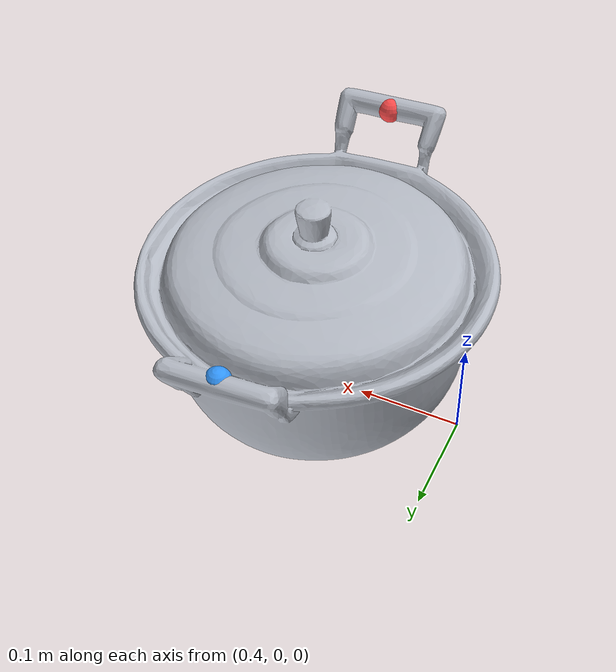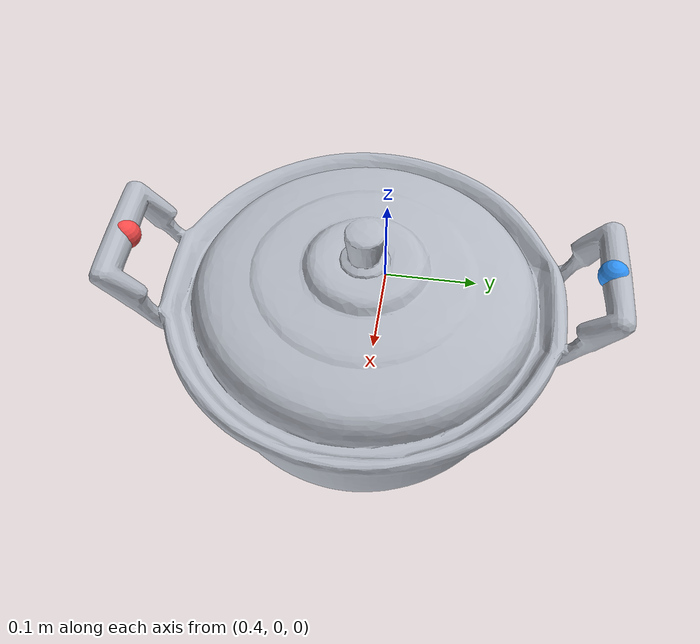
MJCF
<mujoco model="pot">
  <asset>
    <mesh name="pot_mesh" file="pot.obj"/>
  </asset>

  <worldbody>
    <!-- quat 0.7071 0 0 0.7071 = +90 deg about z: the handles start along +-x in
         the mesh, this turns them to +-y so the left arm (y +0.3) and the right
         arm (y -0.3) each face one handle. -->
    <body name="pot" pos="0.55 0 0.12" quat="0.7071068 0 0 0.7071068">
      <freejoint name="pot_free"/>
      <geom name="pot_visual" type="mesh" mesh="pot_mesh" mass="0"
            contype="0" conaffinity="0" group="2" rgba="0.72 0.74 0.78 1"/>
      <geom name="pot_body_col" group="3" type="cylinder" size="0.145 0.070" pos="0 0 -0.050"
            mass="0.80" contype="1" conaffinity="1" rgba="1 0 0 0.25"/>
      <geom name="pot_lid_col" group="3" type="cylinder" size="0.152 0.018" pos="0 0 0.034"
            mass="0.10" contype="1" conaffinity="1" rgba="1 0 0 0.25"/>
      <geom name="pot_knob_col" group="3" type="sphere" size="0.020" pos="0 0 0.080"
            mass="0.02" contype="1" conaffinity="1" rgba="1 0 0 0.25"/>
      <geom name="pot_handle_l_bar" group="3" type="cylinder" size="0.010"
            fromto="0.1935 -0.0506 0.0697  0.1935 0.0598 0.0697"
            mass="0.03" contype="1" conaffinity="1" rgba="1 0 0 0.25"/>
      <geom name="pot_handle_l_leg1" group="3" type="cylinder" size="0.009"
            fromto="0.168 -0.0366 0.014  0.191 -0.0366 0.062"
            mass="0.005" contype="1" conaffinity="1" rgba="1 0 0 0.25"/>
      <geom name="pot_handle_l_leg2" group="3" type="cylinder" size="0.009"
            fromto="0.168 0.0466 0.014  0.191 0.0466 0.062"
            mass="0.005" contype="1" conaffinity="1" rgba="1 0 0 0.25"/>
      <geom name="pot_handle_r_bar" group="3" type="cylinder" size="0.011"
            fromto="-0.1957 -0.0639 0.0727  -0.1957 0.0463 0.0727"
            mass="0.03" contype="1" conaffinity="1" rgba="1 0 0 0.25"/>
      <geom name="pot_handle_r_leg1" group="3" type="cylinder" size="0.009"
            fromto="-0.168 -0.0496 0.014  -0.1881 -0.0496 0.062"
            mass="0.005" contype="1" conaffinity="1" rgba="1 0 0 0.25"/>
      <geom name="pot_handle_r_leg2" group="3" type="cylinder" size="0.009"
            fromto="-0.168 0.0352 0.014  -0.1881 0.0352 0.062"
            mass="0.005" contype="1" conaffinity="1" rgba="1 0 0 0.25"/>
            mass="0.005" contype="1" conaffinity="1" rgba="1 0 0 0.25"/>
      <!-- grasp sites: one per handle, named in the LEFT/RIGHT arm sense (after
           the +90 deg z rotation the +x handle faces +y = the left arm). -->
      <site name="pot_site"      pos="0 0 0"        size="0.010" rgba="0.2 1 0.4 1" group="0"/>
      <site name="pot_handle_l"  pos="0.1935 0.0046 0.0697" size="0.012" rgba="0.2 0.6 1 1" group="0"/>
      <site name="pot_handle_r"  pos="-0.1957 -0.0088 0.0727" size="0.012" rgba="1 0.3 0.3 1" group="0"/>
    </body>
  </worldbody>
</mujoco>
